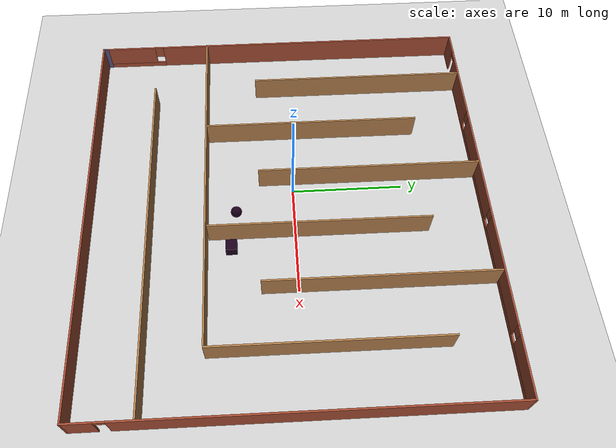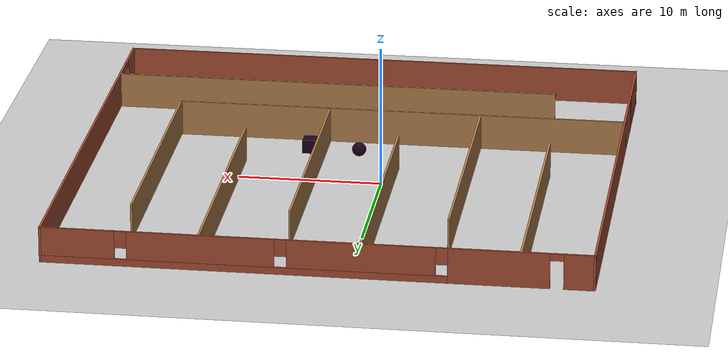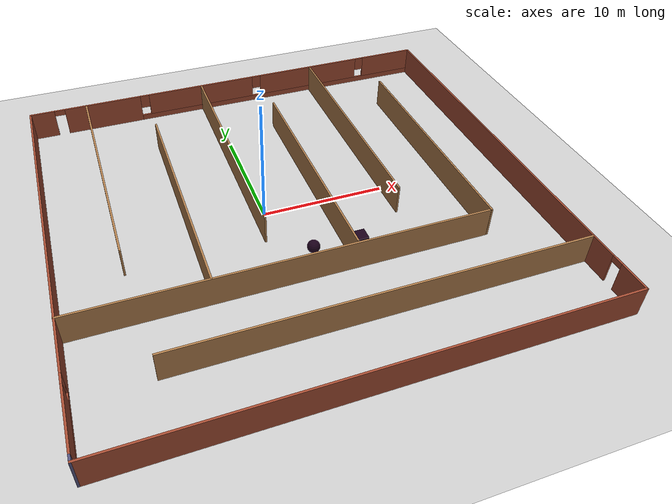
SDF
<sdf version="1.6">
 <world name="default">
  <model name="ground_plane">
   <static>1</static>
   <link name="link">
    <collision name="collision">
     <geometry><plane><normal>0 0 1</normal><size>100 100</size></plane></geometry>
     <surface><friction><ode><mu>100</mu><mu2>50</mu2></ode></friction></surface>
    </collision>
    <visual name="visual">
     <cast_shadows>0</cast_shadows>
     <geometry><plane><normal>0 0 1</normal><size>100 100</size></plane></geometry>
     <material>
      <script><uri>file://media/materials/scripts/gazebo.material</uri><name>Gazebo/Grey</name></script>
     </material>
    </visual>
   </link>
  </model>
  <model name="Building1">
   <pose>2.18279 -0.6308 0 0 -0 0</pose>
   <link name="Wall_135">
    <pose>0.005428 17.55 0 0 -0 0</pose>
    <visual name="Wall_135_Visual_0">
     <pose>-17.5623 0 1.25 0 -0 0</pose>
     <geometry><box><size>2.12549 0.15 2.5</size></box></geometry>
     <material>
      <script><uri>file://media/materials/scripts/gazebo.material</uri><name>Gazebo/Bricks</name></script>
      <ambient>0.333333 0.333333 0.498039 1</ambient>
     </material>
     <meta><layer>0</layer></meta>
    </visual>
    <collision name="Wall_135_Collision_0">
     <geometry><box><size>2.12549 0.15 2.5</size></box></geometry>
     <pose>-17.5623 0 1.25 0 -0 0</pose>
    </collision>
    <visual name="Wall_135_Visual_1">
     <pose>-12.2043 0 1.25 0 -0 0</pose>
     <geometry><box><size>6.79049 0.15 2.5</size></box></geometry>
     <material>
      <script><uri>file://media/materials/scripts/gazebo.material</uri><name>Gazebo/Bricks</name></script>
      <ambient>0.333333 0.333333 0.498039 1</ambient>
     </material>
     <meta><layer>0</layer></meta>
    </visual>
    <collision name="Wall_135_Collision_1">
     <geometry><box><size>6.79049 0.15 2.5</size></box></geometry>
     <pose>-12.2043 0 1.25 0 -0 0</pose>
    </collision>
    <visual name="Wall_135_Visual_2">
     <pose>4.90799 0 0.25 0 -0 0</pose>
     <geometry><box><size>27.434 0.15 0.5</size></box></geometry>
     <material>
      <script><uri>file://media/materials/scripts/gazebo.material</uri><name>Gazebo/Bricks</name></script>
      <ambient>0.333333 0.333333 0.498039 1</ambient>
     </material>
     <meta><layer>0</layer></meta>
    </visual>
    <collision name="Wall_135_Collision_2">
     <geometry><box><size>27.434 0.15 0.5</size></box></geometry>
     <pose>4.90799 0 0.25 0 -0 0</pose>
    </collision>
    <visual name="Wall_135_Visual_3">
     <pose>-3.02838 0 1.5 0 -0 0</pose>
     <geometry><box><size>9.96126 0.15 2</size></box></geometry>
     <material>
      <script><uri>file://media/materials/scripts/gazebo.material</uri><name>Gazebo/Bricks</name></script>
      <ambient>0.333333 0.333333 0.498039 1</ambient>
     </material>
     <meta><layer>0</layer></meta>
    </visual>
    <collision name="Wall_135_Collision_3">
     <geometry><box><size>9.96126 0.15 2</size></box></geometry>
     <pose>-3.02838 0 1.5 0 -0 0</pose>
    </collision>
    <visual name="Wall_135_Visual_4">
     <pose>7.73288 0 1.5 0 -0 0</pose>
     <geometry><box><size>9.96126 0.15 2</size></box></geometry>
     <material>
      <script><uri>file://media/materials/scripts/gazebo.material</uri><name>Gazebo/Bricks</name></script>
      <ambient>0.333333 0.333333 0.498039 1</ambient>
     </material>
     <meta><layer>0</layer></meta>
    </visual>
    <collision name="Wall_135_Collision_4">
     <geometry><box><size>9.96126 0.15 2</size></box></geometry>
     <pose>7.73288 0 1.5 0 -0 0</pose>
    </collision>
    <visual name="Wall_135_Visual_5">
     <pose>16.0693 0 1.5 0 -0 0</pose>
     <geometry><box><size>5.11148 0.15 2</size></box></geometry>
     <material>
      <script><uri>file://media/materials/scripts/gazebo.material</uri><name>Gazebo/Bricks</name></script>
      <ambient>0.333333 0.333333 0.498039 1</ambient>
     </material>
     <meta><layer>0</layer></meta>
    </visual>
    <collision name="Wall_135_Collision_5">
     <geometry><box><size>5.11148 0.15 2</size></box></geometry>
     <pose>16.0693 0 1.5 0 -0 0</pose>
    </collision>
    <visual name="Wall_135_Visual_6">
     <pose>-8.40901 0 1.9 0 -0 0</pose>
     <geometry><box><size>0.8 0.15 1.2</size></box></geometry>
     <material>
      <script><uri>file://media/materials/scripts/gazebo.material</uri><name>Gazebo/Bricks</name></script>
      <ambient>0.333333 0.333333 0.498039 1</ambient>
     </material>
     <meta><layer>0</layer></meta>
    </visual>
    <collision name="Wall_135_Collision_6">
     <geometry><box><size>0.8 0.15 1.2</size></box></geometry>
     <pose>-8.40901 0 1.9 0 -0 0</pose>
    </collision>
    <visual name="Wall_135_Visual_7">
     <pose>2.35225 0 1.9 0 -0 0</pose>
     <geometry><box><size>0.8 0.15 1.2</size></box></geometry>
     <material>
      <script><uri>file://media/materials/scripts/gazebo.material</uri><name>Gazebo/Bricks</name></script>
      <ambient>0.333333 0.333333 0.498039 1</ambient>
     </material>
     <meta><layer>0</layer></meta>
    </visual>
    <collision name="Wall_135_Collision_7">
     <geometry><box><size>0.8 0.15 1.2</size></box></geometry>
     <pose>2.35225 0 1.9 0 -0 0</pose>
    </collision>
    <visual name="Wall_135_Visual_8">
     <pose>13.1135 0 1.9 0 -0 0</pose>
     <geometry><box><size>0.8 0.15 1.2</size></box></geometry>
     <material>
      <script><uri>file://media/materials/scripts/gazebo.material</uri><name>Gazebo/Bricks</name></script>
      <ambient>0.333333 0.333333 0.498039 1</ambient>
     </material>
     <meta><layer>0</layer></meta>
    </visual>
    <collision name="Wall_135_Collision_8">
     <geometry><box><size>0.8 0.15 1.2</size></box></geometry>
     <pose>13.1135 0 1.9 0 -0 0</pose>
    </collision>
    <visual name="Wall_135_Visual_9">
     <pose>-16.0495 0 2.25 0 -0 0</pose>
     <geometry><box><size>0.9 0.15 0.5</size></box></geometry>
     <material>
      <script><uri>file://media/materials/scripts/gazebo.material</uri><name>Gazebo/Bricks</name></script>
      <ambient>0.333333 0.333333 0.498039 1</ambient>
     </material>
     <meta><layer>0</layer></meta>
    </visual>
    <collision name="Wall_135_Collision_9">
     <geometry><box><size>0.9 0.15 0.5</size></box></geometry>
     <pose>-16.0495 0 2.25 0 -0 0</pose>
    </collision>
   </link>
   <link name="Wall_138">
    <collision name="Wall_138_Collision">
     <geometry><box><size>20 0.15 2.5</size></box></geometry>
     <pose>0 0 1.25 0 -0 0</pose>
    </collision>
    <visual name="Wall_138_Visual">
     <pose>0 0 1.25 0 -0 0</pose>
     <geometry><box><size>20 0.15 2.5</size></box></geometry>
     <material>
      <script><uri>file://media/materials/scripts/gazebo.material</uri><name>Gazebo/Wood</name></script>
      <ambient>0.333333 0.333333 0.498039 1</ambient>
     </material>
     <meta><layer>0</layer></meta>
    </visual>
    <pose>-13.6766 7.55431 0 0 -0 -1.5708</pose>
   </link>
   <link name="Wall_140">
    <collision name="Wall_140_Collision">
     <geometry><box><size>19.75 0.15 2.5</size></box></geometry>
     <pose>0 0 1.25 0 -0 0</pose>
    </collision>
    <visual name="Wall_140_Visual">
     <pose>0 0 1.25 0 -0 0</pose>
     <geometry><box><size>19.75 0.15 2.5</size></box></geometry>
     <material>
      <script><uri>file://media/materials/scripts/gazebo.material</uri><name>Gazebo/Wood</name></script>
      <ambient>0.333333 0.333333 0.498039 1</ambient>
     </material>
     <meta><layer>0</layer></meta>
    </visual>
    <pose>-8.29597 2.63601 0 0 -0 1.5708</pose>
   </link>
   <link name="Wall_142">
    <collision name="Wall_142_Collision">
     <geometry><box><size>20 0.15 2.5</size></box></geometry>
     <pose>0 0 1.25 0 -0 0</pose>
    </collision>
    <visual name="Wall_142_Visual">
     <pose>0 0 1.25 0 -0 0</pose>
     <geometry><box><size>20 0.15 2.5</size></box></geometry>
     <material>
      <script><uri>file://media/materials/scripts/gazebo.material</uri><name>Gazebo/Wood</name></script>
      <ambient>0.333333 0.333333 0.498039 1</ambient>
     </material>
     <meta><layer>0</layer></meta>
    </visual>
    <pose>-3.02295 7.55431 0 0 -0 -1.5708</pose>
   </link>
   <link name="Wall_144">
    <collision name="Wall_144_Collision">
     <geometry><box><size>19.5 0.15 2.5</size></box></geometry>
     <pose>0 0 1.25 0 -0 0</pose>
    </collision>
    <visual name="Wall_144_Visual">
     <pose>0 0 1.25 0 -0 0</pose>
     <geometry><box><size>19.5 0.15 2.5</size></box></geometry>
     <material>
      <script><uri>file://media/materials/scripts/gazebo.material</uri><name>Gazebo/Wood</name></script>
      <ambient>0.333333 0.333333 0.498039 1</ambient>
     </material>
     <meta><layer>0</layer></meta>
    </visual>
    <pose>2.46529 2.72624 0 0 -0 1.5708</pose>
   </link>
   <link name="Wall_146">
    <collision name="Wall_146_Collision">
     <geometry><box><size>20 0.15 2.5</size></box></geometry>
     <pose>0 0 1.25 0 -0 0</pose>
    </collision>
    <visual name="Wall_146_Visual">
     <pose>0 0 1.25 0 -0 0</pose>
     <geometry><box><size>20 0.15 2.5</size></box></geometry>
     <material>
      <script><uri>file://media/materials/scripts/gazebo.material</uri><name>Gazebo/Wood</name></script>
      <ambient>0.333333 0.333333 0.498039 1</ambient>
     </material>
     <meta><layer>0</layer></meta>
    </visual>
    <pose>7.84593 7.44669 0 0 -0 -1.5708</pose>
   </link>
   <link name="Wall_149">
    <collision name="Wall_149_Collision">
     <geometry><box><size>20 0.15 2.5</size></box></geometry>
     <pose>0 0 1.25 0 -0 0</pose>
    </collision>
    <visual name="Wall_149_Visual">
     <pose>0 0 1.25 0 -0 0</pose>
     <geometry><box><size>20 0.15 2.5</size></box></geometry>
     <material>
      <script><uri>file://media/materials/scripts/gazebo.material</uri><name>Gazebo/Wood</name></script>
      <ambient>0.333333 0.333333 0.498039 1</ambient>
     </material>
     <meta><layer>0</layer></meta>
    </visual>
    <pose>13.2266 2.76101 0 0 -0 1.5708</pose>
   </link>
   <link name="Wall_152">
    <pose>18.5554 0 0 0 -0 -1.5708</pose>
    <visual name="Wall_152_Visual_0">
     <pose>-1.68906 0 1.25 0 -0 0</pose>
     <geometry><box><size>31.8719 0.15 2.5</size></box></geometry>
     <material>
      <script><uri>file://media/materials/scripts/gazebo.material</uri><name>Gazebo/Bricks</name></script>
      <ambient>0.333333 0.333333 0.498039 1</ambient>
     </material>
     <meta><layer>0</layer></meta>
    </visual>
    <collision name="Wall_152_Collision_0">
     <geometry><box><size>31.8719 0.15 2.5</size></box></geometry>
     <pose>-1.68906 0 1.25 0 -0 0</pose>
    </collision>
    <visual name="Wall_152_Visual_1">
     <pose>16.3859 0 1.25 0 -0 0</pose>
     <geometry><box><size>2.47813 0.15 2.5</size></box></geometry>
     <material>
      <script><uri>file://media/materials/scripts/gazebo.material</uri><name>Gazebo/Bricks</name></script>
      <ambient>0.333333 0.333333 0.498039 1</ambient>
     </material>
     <meta><layer>0</layer></meta>
    </visual>
    <collision name="Wall_152_Collision_1">
     <geometry><box><size>2.47813 0.15 2.5</size></box></geometry>
     <pose>16.3859 0 1.25 0 -0 0</pose>
    </collision>
    <visual name="Wall_152_Visual_2">
     <pose>14.6969 0 2.25 0 -0 0</pose>
     <geometry><box><size>0.9 0.15 0.5</size></box></geometry>
     <material>
      <script><uri>file://media/materials/scripts/gazebo.material</uri><name>Gazebo/Bricks</name></script>
      <ambient>0.333333 0.333333 0.498039 1</ambient>
     </material>
     <meta><layer>0</layer></meta>
    </visual>
    <collision name="Wall_152_Collision_2">
     <geometry><box><size>0.9 0.15 0.5</size></box></geometry>
     <pose>14.6969 0 2.25 0 -0 0</pose>
    </collision>
   </link>
   <link name="Wall_153">
    <collision name="Wall_153_Collision">
     <geometry><box><size>37.25 0.15 2.5</size></box></geometry>
     <pose>0 0 1.25 0 -0 0</pose>
    </collision>
    <visual name="Wall_153_Visual">
     <pose>0 0 1.25 0 -0 0</pose>
     <geometry><box><size>37.25 0.15 2.5</size></box></geometry>
     <material>
      <script><uri>file://media/materials/scripts/gazebo.material</uri><name>Gazebo/Bricks</name></script>
      <ambient>0.333333 0.333333 0.498039 1</ambient>
     </material>
     <meta><layer>0</layer></meta>
    </visual>
    <pose>0.005428 -17.55 0 0 -0 3.14159</pose>
   </link>
   <link name="Wall_154">
    <collision name="Wall_154_Collision">
     <geometry><box><size>0.55 0.15 2.5</size></box></geometry>
     <pose>0 0 1.25 0 -0 0</pose>
    </collision>
    <visual name="Wall_154_Visual">
     <pose>0 0 1.25 0 -0 0</pose>
     <geometry><box><size>0.55 0.15 2.5</size></box></geometry>
     <material>
      <script><uri>file://media/materials/scripts/gazebo.material</uri><name>Gazebo/Grey</name></script>
      <ambient>0.333333 0.333333 0.498039 1</ambient>
     </material>
     <meta><layer>0</layer></meta>
    </visual>
    <pose>-18.5446 -17.35 0 0 -0 1.5708</pose>
   </link>
   <link name="Wall_156">
    <collision name="Wall_156_Collision">
     <geometry><box><size>31.75 0.15 2.5</size></box></geometry>
     <pose>0 0 1.25 0 -0 0</pose>
    </collision>
    <visual name="Wall_156_Visual">
     <pose>0 0 1.25 0 -0 0</pose>
     <geometry><box><size>31.75 0.15 2.5</size></box></geometry>
     <material>
      <script><uri>file://media/materials/scripts/gazebo.material</uri><name>Gazebo/Wood</name></script>
      <ambient>0.333333 0.333333 0.498039 1</ambient>
     </material>
     <meta><layer>0</layer></meta>
    </visual>
    <pose>2.69958 -12.1142 0 0 -0 3.14159</pose>
   </link>
   <link name="Wall_47">
    <pose>-18.5446 0.2 0 0 -0 -1.5708</pose>
    <visual name="Wall_47_Visual_0">
     <pose>-2.80922 0 1.25 0 -0 0</pose>
     <geometry><box><size>29.2316 0.15 2.5</size></box></geometry>
     <material>
      <script><uri>file://media/materials/scripts/gazebo.material</uri><name>Gazebo/Bricks</name></script>
      <ambient>0.333333 0.333333 0.498039 1</ambient>
     </material>
     <meta><layer>0</layer></meta>
    </visual>
    <collision name="Wall_47_Collision_0">
     <geometry><box><size>29.2316 0.15 2.5</size></box></geometry>
     <pose>-2.80922 0 1.25 0 -0 0</pose>
    </collision>
    <visual name="Wall_47_Visual_1">
     <pose>14.6158 0 0.25 0 -0 0</pose>
     <geometry><box><size>5.61844 0.15 0.5</size></box></geometry>
     <material>
      <script><uri>file://media/materials/scripts/gazebo.material</uri><name>Gazebo/Bricks</name></script>
      <ambient>0.333333 0.333333 0.498039 1</ambient>
     </material>
     <meta><layer>0</layer></meta>
    </visual>
    <collision name="Wall_47_Collision_1">
     <geometry><box><size>5.61844 0.15 0.5</size></box></geometry>
     <pose>14.6158 0 0.25 0 -0 0</pose>
    </collision>
    <visual name="Wall_47_Visual_2">
     <pose>15.0158 0 1.5 0 -0 0</pose>
     <geometry><box><size>4.81844 0.15 2</size></box></geometry>
     <material>
      <script><uri>file://media/materials/scripts/gazebo.material</uri><name>Gazebo/Bricks</name></script>
      <ambient>0.333333 0.333333 0.498039 1</ambient>
     </material>
     <meta><layer>0</layer></meta>
    </visual>
    <collision name="Wall_47_Collision_2">
     <geometry><box><size>4.81844 0.15 2</size></box></geometry>
     <pose>15.0158 0 1.5 0 -0 0</pose>
    </collision>
    <visual name="Wall_47_Visual_3">
     <pose>12.2066 0 1.9 0 -0 0</pose>
     <geometry><box><size>0.8 0.15 1.2</size></box></geometry>
     <material>
      <script><uri>file://media/materials/scripts/gazebo.material</uri><name>Gazebo/Bricks</name></script>
      <ambient>0.333333 0.333333 0.498039 1</ambient>
     </material>
     <meta><layer>0</layer></meta>
    </visual>
    <collision name="Wall_47_Collision_3">
     <geometry><box><size>0.8 0.15 1.2</size></box></geometry>
     <pose>12.2066 0 1.9 0 -0 0</pose>
    </collision>
   </link>
   <link name="Wall_68">
    <collision name="Wall_68_Collision">
     <geometry><box><size>31.75 0.15 2.5</size></box></geometry>
     <pose>0 0 1.25 0 -0 0</pose>
    </collision>
    <visual name="Wall_68_Visual">
     <pose>0 0 1.25 0 -0 0</pose>
     <geometry><box><size>31.75 0.15 2.5</size></box></geometry>
     <material>
      <script><uri>file://media/materials/scripts/gazebo.material</uri><name>Gazebo/Wood</name></script>
      <ambient>0.333333 0.333333 0.498039 1</ambient>
     </material>
     <meta><layer>0</layer></meta>
    </visual>
    <pose>-2.75543 -7.17891 0 0 -0 3.14159</pose>
   </link>
   <static>1</static>
  </model>
  <model name="unit_box_6">
   <link name="link">
    <inertial>
     <mass>1</mass>
     <inertia>
      <ixx>0.166667</ixx>
      <ixy>0</ixy>
      <ixz>0</ixz>
      <iyy>0.166667</iyy>
      <iyz>0</iyz>
      <izz>0.166667</izz>
     </inertia>
    </inertial>
    <visual name="visual">
     <geometry><box><size>1 1 1</size></box></geometry>
     <material>
      <script><name>Gazebo/Grey</name><uri>file://media/materials/scripts/gazebo.material</uri></script>
      <shader type="pixel"><normal_map>__default__</normal_map></shader>
      <ambient>0.1 0 0.1 1</ambient>
      <diffuse>0.1 0 0.1 1</diffuse>
      <specular>0.1 0 0.1 1</specular>
      <emissive>0.1 0 0.1 1</emissive>
     </material>
    </visual>
    <collision name="collision">
     <geometry><box><size>1 1 1</size></box></geometry>
     <surface>
      <friction>
       <ode><mu>1</mu><mu2>1</mu2><fdir1>0 0 0</fdir1><slip1>0</slip1><slip2>0</slip2></ode>
       <torsional>
        <coefficient>1</coefficient>
        <patch_radius>0</patch_radius>
        <surface_radius>0</surface_radius>
        <use_patch_radius>1</use_patch_radius>
        <ode><slip>0</slip></ode>
       </torsional>
      </friction>
      <bounce><restitution_coefficient>0</restitution_coefficient><threshold>1e+06</threshold></bounce>
      <contact>
       <collide_without_contact>0</collide_without_contact>
       <collide_without_contact_bitmask>1</collide_without_contact_bitmask>
       <collide_bitmask>1</collide_bitmask>
       <ode>
        <soft_cfm>0</soft_cfm>
        <soft_erp>0.2</soft_erp>
        <kp>1e+13</kp>
        <kd>1</kd>
        <max_vel>0.01</max_vel>
        <min_depth>0</min_depth>
       </ode>
       <bullet>
        <split_impulse>1</split_impulse>
        <split_impulse_penetration_threshold>-0.01</split_impulse_penetration_threshold>
        <soft_cfm>0</soft_cfm>
        <soft_erp>0.2</soft_erp>
        <kp>1e+13</kp>
        <kd>1</kd>
       </bullet>
      </contact>
     </surface>
    </collision>
   </link>
   <static>0</static>
   <pose>5.76483 -5.64419 0.5 0 -0 0</pose>
  </model>
  <model name="unit_sphere_1_4">
   <link name="link">
    <inertial>
     <mass>1</mass>
     <inertia><ixx>0.1</ixx><ixy>0</ixy><ixz>0</ixz><iyy>0.1</iyy><iyz>0</iyz><izz>0.1</izz></inertia>
    </inertial>
    <visual name="visual">
     <geometry><sphere><radius>0.5</radius></sphere></geometry>
     <material>
      <script><name>Gazebo/Grey</name><uri>file://media/materials/scripts/gazebo.material</uri></script>
      <shader type="pixel"><normal_map>__default__</normal_map></shader>
      <ambient>0.1 0 0.1 1</ambient>
      <diffuse>0.1 0 0.1 1</diffuse>
      <specular>0.1 0 0.1 1</specular>
      <emissive>0.1 0 0.1 1</emissive>
     </material>
    </visual>
    <collision name="collision">
     <geometry><sphere><radius>0.5</radius></sphere></geometry>
     <surface>
      <friction>
       <ode><mu>1</mu><mu2>1</mu2><fdir1>0 0 0</fdir1><slip1>0</slip1><slip2>0</slip2></ode>
       <torsional>
        <coefficient>1</coefficient>
        <patch_radius>0</patch_radius>
        <surface_radius>0</surface_radius>
        <use_patch_radius>1</use_patch_radius>
        <ode><slip>0</slip></ode>
       </torsional>
      </friction>
      <bounce><restitution_coefficient>0</restitution_coefficient><threshold>1e+06</threshold></bounce>
      <contact>
       <collide_without_contact>0</collide_without_contact>
       <collide_without_contact_bitmask>1</collide_without_contact_bitmask>
       <collide_bitmask>1</collide_bitmask>
       <ode>
        <soft_cfm>0</soft_cfm>
        <soft_erp>0.2</soft_erp>
        <kp>1e+13</kp>
        <kd>1</kd>
        <max_vel>0.01</max_vel>
        <min_depth>0</min_depth>
       </ode>
       <bullet>
        <split_impulse>1</split_impulse>
        <split_impulse_penetration_threshold>-0.01</split_impulse_penetration_threshold>
        <soft_cfm>0</soft_cfm>
        <soft_erp>0.2</soft_erp>
        <kp>1e+13</kp>
        <kd>1</kd>
       </bullet>
      </contact>
     </surface>
    </collision>
   </link>
   <static>0</static>
   <pose>2.20848 -5.18813 0.5 0 -0 0</pose>
  </model>
 </world>
</sdf>
